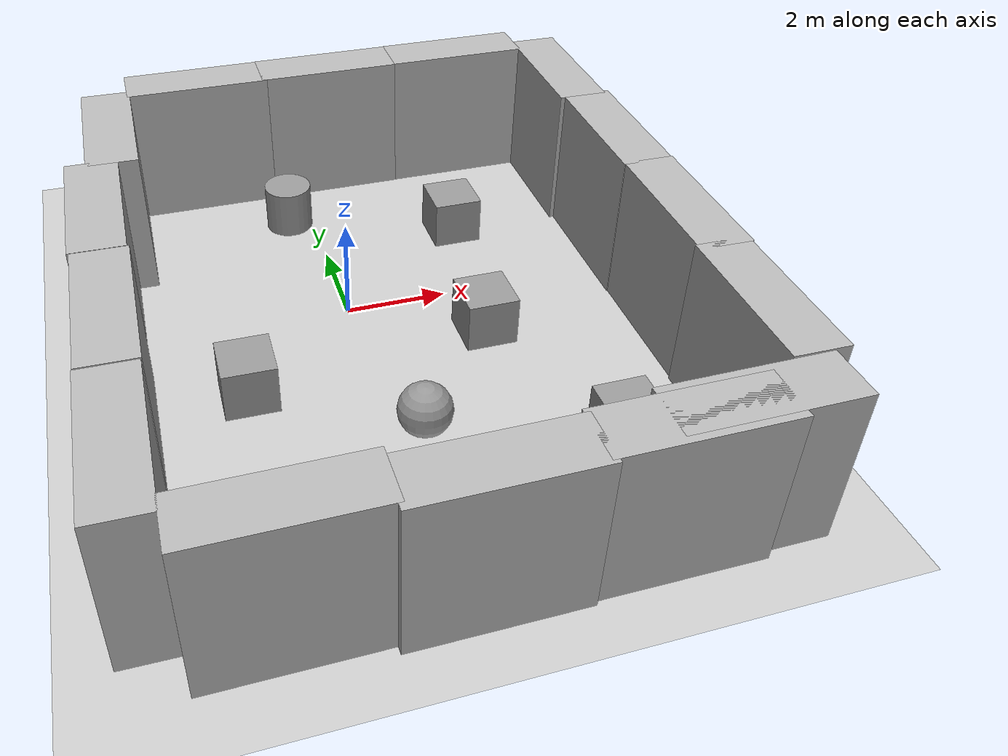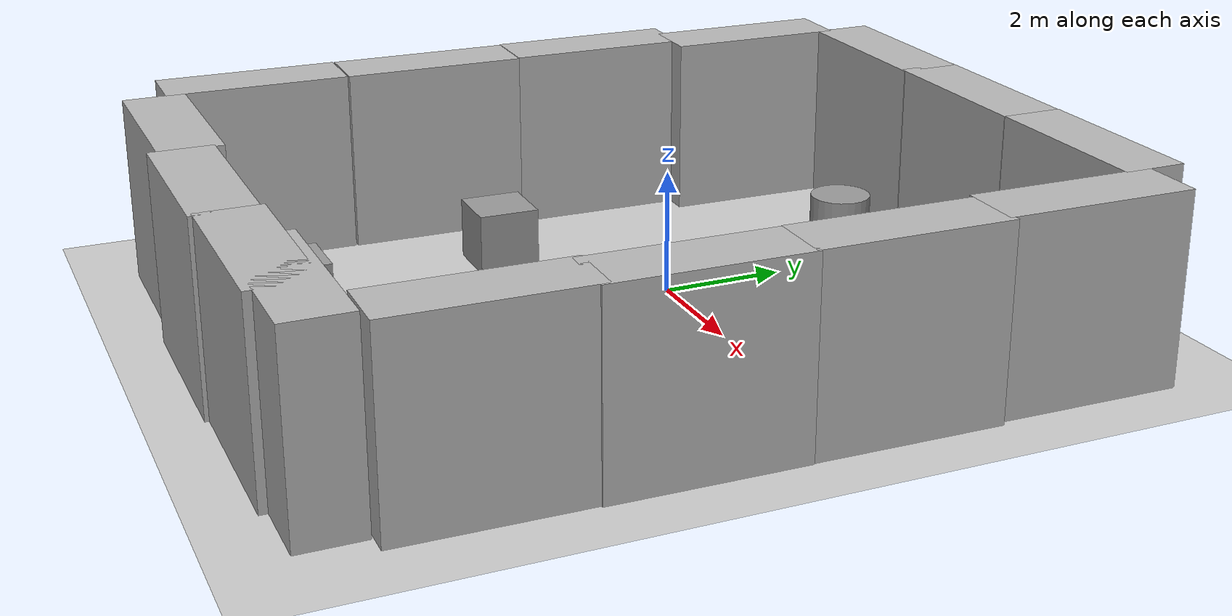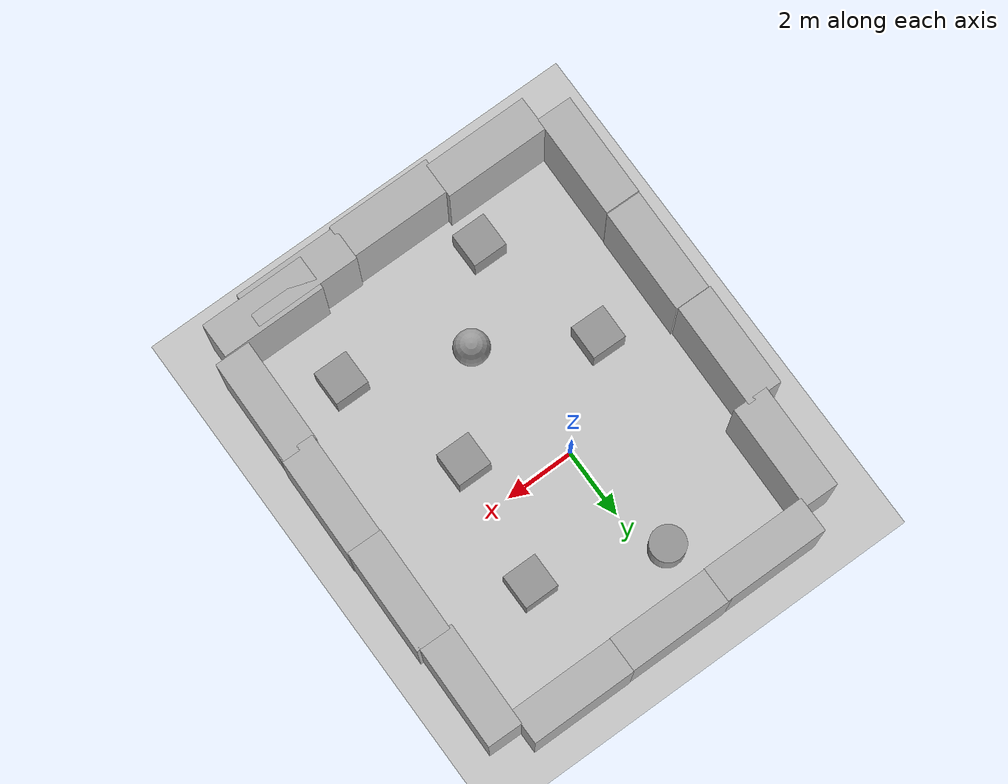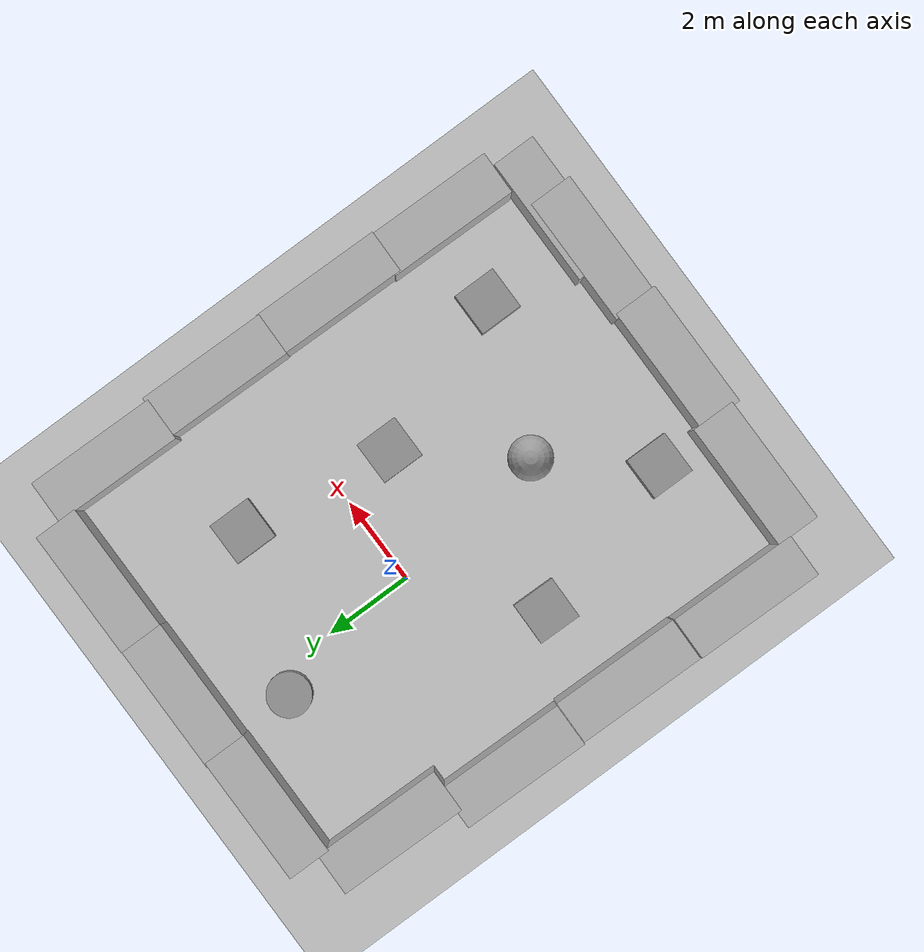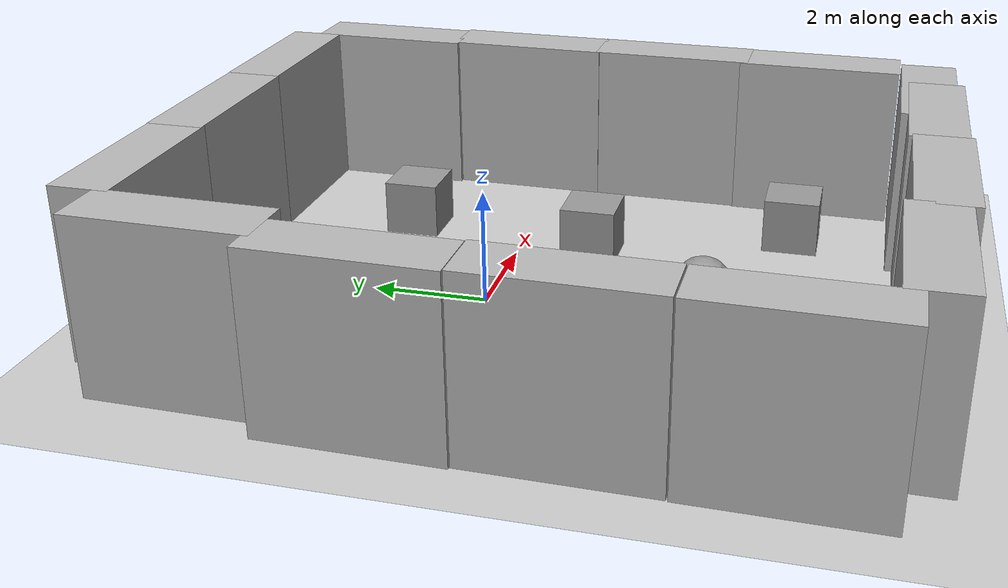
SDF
<sdf version="1.7">
 <world name="default">
  <light name="sun" type="directional">
   <pose>0 0 10 0 -0 0</pose>
   <diffuse>0.8 0.8 0.8 1</diffuse>
   <specular>0.2 0.2 0.2 1</specular>
   <attenuation>
    <range>1000</range>
    <constant>0.9</constant>
    <linear>0.01</linear>
    <quadratic>0.001</quadratic>
   </attenuation>
   <direction>-0.5 0.1 -0.9</direction>
   <spot><inner_angle>0</inner_angle><outer_angle>0</outer_angle><falloff>0</falloff></spot>
  </light>
  <model name="ground_plane">
   <static>1</static>
   <link name="link">
    <collision name="collision">
     <geometry><plane><normal>0 0 1</normal><size>100 100</size></plane></geometry>
     <surface><friction><ode><mu>100</mu><mu2>50</mu2></ode></friction></surface>
    </collision>
    <visual name="visual">
     <cast_shadows>0</cast_shadows>
     <geometry><plane><normal>0 0 1</normal><size>100 100</size></plane></geometry>
     <material>
      <script><uri>file://media/materials/scripts/gazebo.material</uri><name>Gazebo/Grey</name></script>
     </material>
    </visual>
   </link>
  </model>
  <gravity>0 0 -9.8</gravity>
  <magnetic_field>6e-06 2.3e-05 -4.2e-05</magnetic_field>
  <atmosphere type="adiabatic"/>
  <physics type="ode">
   <max_step_size>0.001</max_step_size>
   <real_time_factor>1</real_time_factor>
   <real_time_update_rate>1000</real_time_update_rate>
  </physics>
  <scene><ambient>0.4 0.4 0.4 1</ambient><background>0.7 0.7 0.7 1</background><shadows>1</shadows></scene>
  <audio><device>default</device></audio>
  <spherical_coordinates>
   <surface_model>EARTH_WGS84</surface_model>
   <latitude_deg>0</latitude_deg>
   <longitude_deg>0</longitude_deg>
   <elevation>0</elevation>
   <heading_deg>0</heading_deg>
  </spherical_coordinates>
  <model name="unit_box">
   <pose>2.40522 -1.35604 0.499995 -1e-05 -0 0</pose>
   <link name="link">
    <inertial>
     <mass>1</mass>
     <inertia>
      <ixx>0.166667</ixx>
      <ixy>0</ixy>
      <ixz>0</ixz>
      <iyy>0.166667</iyy>
      <iyz>0</iyz>
      <izz>0.166667</izz>
     </inertia>
    </inertial>
    <collision name="collision"><geometry><box><size>1 1 1</size></box></geometry></collision>
    <visual name="visual">
     <geometry><box><size>1 1 1</size></box></geometry>
     <material>
      <script><name>Gazebo/Grey</name><uri>file://media/materials/scripts/gazebo.material</uri></script>
     </material>
    </visual>
   </link>
  </model>
  <model name="unit_cylinder">
   <pose>-0.512672 3.46024 0.49999 0 -0 0</pose>
   <link name="link">
    <inertial>
     <mass>1</mass>
     <inertia><ixx>0.145833</ixx><ixy>0</ixy><ixz>0</ixz><iyy>0.145833</iyy><iyz>0</iyz><izz>0.125</izz></inertia>
    </inertial>
    <collision name="collision">
     <geometry><cylinder><radius>0.5</radius><length>1</length></cylinder></geometry>
    </collision>
    <visual name="visual">
     <geometry><cylinder><radius>0.5</radius><length>1</length></cylinder></geometry>
     <material>
      <script><name>Gazebo/Grey</name><uri>file://media/materials/scripts/gazebo.material</uri></script>
     </material>
    </visual>
   </link>
  </model>
  <model name="unit_sphere_0">
   <pose>0.480705 -3.6808 0.5 0 -0 0</pose>
   <link name="link">
    <inertial>
     <mass>1</mass>
     <inertia><ixx>0.1</ixx><ixy>0</ixy><ixz>0</ixz><iyy>0.1</iyy><iyz>0</iyz><izz>0.1</izz></inertia>
    </inertial>
    <collision name="collision"><geometry><sphere><radius>0.5</radius></sphere></geometry></collision>
    <visual name="visual">
     <geometry><sphere><radius>0.5</radius></sphere></geometry>
     <material>
      <script><name>Gazebo/Grey</name><uri>file://media/materials/scripts/gazebo.material</uri></script>
     </material>
    </visual>
   </link>
  </model>
  <model name="unit_box_1">
   <pose>-1.28306 -5.7782 0.499995 0 1e-05 0</pose>
   <link name="link">
    <inertial>
     <mass>1</mass>
     <inertia>
      <ixx>0.166667</ixx>
      <ixy>0</ixy>
      <ixz>0</ixz>
      <iyy>0.166667</iyy>
      <iyz>0</iyz>
      <izz>0.166667</izz>
     </inertia>
    </inertial>
    <collision name="collision"><geometry><box><size>1 1 1</size></box></geometry></collision>
    <visual name="visual">
     <geometry><box><size>1 1 1</size></box></geometry>
     <material>
      <script><name>Gazebo/Grey</name><uri>file://media/materials/scripts/gazebo.material</uri></script>
     </material>
    </visual>
   </link>
  </model>
  <model name="unit_box_2">
   <pose>3.7077 -4.91692 0.499995 -1e-05 -0 -0</pose>
   <link name="link">
    <inertial>
     <mass>1</mass>
     <inertia>
      <ixx>0.166667</ixx>
      <ixy>0</ixy>
      <ixz>0</ixz>
      <iyy>0.166667</iyy>
      <iyz>0</iyz>
      <izz>0.166667</izz>
     </inertia>
    </inertial>
    <collision name="collision"><geometry><box><size>1 1 1</size></box></geometry></collision>
    <visual name="visual">
     <geometry><box><size>1 1 1</size></box></geometry>
     <material>
      <script><name>Gazebo/Grey</name><uri>file://media/materials/scripts/gazebo.material</uri></script>
     </material>
    </visual>
   </link>
  </model>
  <model name="unit_box_3">
   <pose>2.87794 2.18214 0.499995 0 1e-05 0</pose>
   <link name="link">
    <inertial>
     <mass>1</mass>
     <inertia>
      <ixx>0.166667</ixx>
      <ixy>0</ixy>
      <ixz>0</ixz>
      <iyy>0.166667</iyy>
      <iyz>0</iyz>
      <izz>0.166667</izz>
     </inertia>
    </inertial>
    <collision name="collision"><geometry><box><size>1 1 1</size></box></geometry></collision>
    <visual name="visual">
     <geometry><box><size>1 1 1</size></box></geometry>
     <material>
      <script><name>Gazebo/Grey</name><uri>file://media/materials/scripts/gazebo.material</uri></script>
     </material>
    </visual>
   </link>
  </model>
  <model name="unit_box_4">
   <pose>-2.33603 -2.00523 0.499995 0 -1e-05 -0.013401</pose>
   <link name="link">
    <inertial>
     <mass>1</mass>
     <inertia>
      <ixx>0.166667</ixx>
      <ixy>0</ixy>
      <ixz>0</ixz>
      <iyy>0.166667</iyy>
      <iyz>0</iyz>
      <izz>0.166667</izz>
     </inertia>
    </inertial>
    <collision name="collision"><geometry><box><size>1 1 1</size></box></geometry></collision>
    <visual name="visual">
     <geometry><box><size>1 1 1</size></box></geometry>
     <material>
      <script><name>Gazebo/Grey</name><uri>file://media/materials/scripts/gazebo.material</uri></script>
     </material>
    </visual>
   </link>
  </model>
  <model name="brick_box_3x1x3_0">
   <static>1</static>
   <link name="chassis">
    <pose>0 0 1.5 0 -0 0</pose>
    <collision name="collision"><geometry><box><size>3 1 3</size></box></geometry></collision>
    <visual name="visual">
     <geometry><mesh><uri>model://brick_box_3x1x3/meshes/simple_box.dae</uri><scale>3 1 3</scale></mesh></geometry>
     <material>
      <script>
       <uri>model://brick_box_3x1x3/materials/scripts</uri>
       <uri>model://brick_box_3x1x3/materials/textures</uri>
       <name>BrickBox/Diffuse</name>
      </script>
     </material>
    </visual>
   </link>
   <pose>3.7973 5.1822 0 0 -0 0</pose>
  </model>
  <model name="brick_box_3x1x3_1">
   <static>1</static>
   <link name="chassis">
    <pose>0 0 1.5 0 -0 0</pose>
    <collision name="collision"><geometry><box><size>3 1 3</size></box></geometry></collision>
    <visual name="visual">
     <geometry><mesh><uri>model://brick_box_3x1x3/meshes/simple_box.dae</uri><scale>3 1 3</scale></mesh></geometry>
     <material>
      <script>
       <uri>model://brick_box_3x1x3/materials/scripts</uri>
       <uri>model://brick_box_3x1x3/materials/textures</uri>
       <name>BrickBox/Diffuse</name>
      </script>
     </material>
    </visual>
   </link>
   <pose>-2.10166 5.15588 0 0 -0 0</pose>
  </model>
  <model name="brick_box_3x1x3_2">
   <static>1</static>
   <link name="chassis">
    <pose>0 0 1.5 0 -0 0</pose>
    <collision name="collision"><geometry><box><size>3 1 3</size></box></geometry></collision>
    <visual name="visual">
     <geometry><mesh><uri>model://brick_box_3x1x3/meshes/simple_box.dae</uri><scale>3 1 3</scale></mesh></geometry>
     <material>
      <script>
       <uri>model://brick_box_3x1x3/materials/scripts</uri>
       <uri>model://brick_box_3x1x3/materials/textures</uri>
       <name>BrickBox/Diffuse</name>
      </script>
     </material>
    </visual>
   </link>
   <pose>5.75008 3.59189 0 0 0 -1.58391</pose>
  </model>
  <model name="brick_box_3x1x3">
   <static>1</static>
   <link name="chassis">
    <pose>0 0 1.5 0 -0 0</pose>
    <collision name="collision"><geometry><box><size>3 1 3</size></box></geometry></collision>
    <visual name="visual">
     <geometry><mesh><uri>model://brick_box_3x1x3/meshes/simple_box.dae</uri><scale>3 1 3</scale></mesh></geometry>
     <material>
      <script>
       <uri>model://brick_box_3x1x3/materials/scripts</uri>
       <uri>model://brick_box_3x1x3/materials/textures</uri>
       <name>BrickBox/Diffuse</name>
      </script>
     </material>
    </visual>
   </link>
   <pose>0.79725 5.17039 0 0 -0 0</pose>
  </model>
  <model name="brick_box_3x1x3_2_clone">
   <static>1</static>
   <link name="chassis">
    <pose>0 0 1.5 0 -0 0</pose>
    <collision name="collision"><geometry><box><size>3 1 3</size></box></geometry></collision>
    <visual name="visual">
     <geometry><mesh><uri>model://brick_box_3x1x3/meshes/simple_box.dae</uri><scale>3 1 3</scale></mesh></geometry>
     <material>
      <script>
       <uri>model://brick_box_3x1x3/materials/scripts</uri>
       <uri>model://brick_box_3x1x3/materials/textures</uri>
       <name>BrickBox/Diffuse</name>
      </script>
     </material>
    </visual>
   </link>
   <pose>5.80022 0.66613 0 0 0 -1.58391</pose>
  </model>
  <model name="brick_box_3x1x3_2_clone_0">
   <static>1</static>
   <link name="chassis">
    <pose>0 0 1.5 0 -0 0</pose>
    <collision name="collision"><geometry><box><size>3 1 3</size></box></geometry></collision>
    <visual name="visual">
     <geometry><mesh><uri>model://brick_box_3x1x3/meshes/simple_box.dae</uri><scale>3 1 3</scale></mesh></geometry>
     <material>
      <script>
       <uri>model://brick_box_3x1x3/materials/scripts</uri>
       <uri>model://brick_box_3x1x3/materials/textures</uri>
       <name>BrickBox/Diffuse</name>
      </script>
     </material>
    </visual>
   </link>
   <pose>5.78061 -2.2738 0 0 0 -1.58391</pose>
  </model>
  <model name="brick_box_3x1x3_2_clone_1">
   <static>1</static>
   <link name="chassis">
    <pose>0 0 1.5 0 -0 0</pose>
    <collision name="collision"><geometry><box><size>3 1 3</size></box></geometry></collision>
    <visual name="visual">
     <geometry><mesh><uri>model://brick_box_3x1x3/meshes/simple_box.dae</uri><scale>3 1 3</scale></mesh></geometry>
     <material>
      <script>
       <uri>model://brick_box_3x1x3/materials/scripts</uri>
       <uri>model://brick_box_3x1x3/materials/textures</uri>
       <name>BrickBox/Diffuse</name>
      </script>
     </material>
    </visual>
   </link>
   <pose>5.71068 -5.12828 0 0 0 -1.58391</pose>
  </model>
  <model name="brick_box_3x1x3_2_clone_2">
   <static>1</static>
   <link name="chassis">
    <pose>0 0 1.5 0 -0 0</pose>
    <collision name="collision"><geometry><box><size>3 1 3</size></box></geometry></collision>
    <visual name="visual">
     <geometry><mesh><uri>model://brick_box_3x1x3/meshes/simple_box.dae</uri><scale>3 1 3</scale></mesh></geometry>
     <material>
      <script>
       <uri>model://brick_box_3x1x3/materials/scripts</uri>
       <uri>model://brick_box_3x1x3/materials/textures</uri>
       <name>BrickBox/Diffuse</name>
      </script>
     </material>
    </visual>
   </link>
   <pose>-4.06005 3.4083 0 0 0 -1.58391</pose>
  </model>
  <model name="brick_box_3x1x3_2_clone_3">
   <static>1</static>
   <link name="chassis">
    <pose>0 0 1.5 0 -0 0</pose>
    <collision name="collision"><geometry><box><size>3 1 3</size></box></geometry></collision>
    <visual name="visual">
     <geometry><mesh><uri>model://brick_box_3x1x3/meshes/simple_box.dae</uri><scale>3 1 3</scale></mesh></geometry>
     <material>
      <script>
       <uri>model://brick_box_3x1x3/materials/scripts</uri>
       <uri>model://brick_box_3x1x3/materials/textures</uri>
       <name>BrickBox/Diffuse</name>
      </script>
     </material>
    </visual>
   </link>
   <pose>-4.48331 0.51624 0 0 0 -1.58391</pose>
  </model>
  <model name="brick_box_3x1x3_2_clone_4">
   <static>1</static>
   <link name="chassis">
    <pose>0 0 1.5 0 -0 0</pose>
    <collision name="collision"><geometry><box><size>3 1 3</size></box></geometry></collision>
    <visual name="visual">
     <geometry><mesh><uri>model://brick_box_3x1x3/meshes/simple_box.dae</uri><scale>3 1 3</scale></mesh></geometry>
     <material>
      <script>
       <uri>model://brick_box_3x1x3/materials/scripts</uri>
       <uri>model://brick_box_3x1x3/materials/textures</uri>
       <name>BrickBox/Diffuse</name>
      </script>
     </material>
    </visual>
   </link>
   <pose>-4.48331 -2.4954 0 0 0 -1.58391</pose>
  </model>
  <model name="brick_box_3x1x3_2_clone_5">
   <static>1</static>
   <link name="chassis">
    <pose>0 0 1.5 0 -0 0</pose>
    <collision name="collision"><geometry><box><size>3 1 3</size></box></geometry></collision>
    <visual name="visual">
     <geometry><mesh><uri>model://brick_box_3x1x3/meshes/simple_box.dae</uri><scale>3 1 3</scale></mesh></geometry>
     <material>
      <script>
       <uri>model://brick_box_3x1x3/materials/scripts</uri>
       <uri>model://brick_box_3x1x3/materials/textures</uri>
       <name>BrickBox/Diffuse</name>
      </script>
     </material>
    </visual>
   </link>
   <pose>-4.53613 -5.52087 0 0 0 -1.58391</pose>
  </model>
  <model name="brick_box_3x1x3_3">
   <static>1</static>
   <link name="chassis">
    <pose>0 0 1.5 0 -0 0</pose>
    <collision name="collision"><geometry><box><size>3 1 3</size></box></geometry></collision>
    <visual name="visual">
     <geometry><mesh><uri>model://brick_box_3x1x3/meshes/simple_box.dae</uri><scale>3 1 3</scale></mesh></geometry>
     <material>
      <script>
       <uri>model://brick_box_3x1x3/materials/scripts</uri>
       <uri>model://brick_box_3x1x3/materials/textures</uri>
       <name>BrickBox/Diffuse</name>
      </script>
     </material>
    </visual>
   </link>
   <pose>-2.57003 -7.21474 0 0 -0 0</pose>
  </model>
  <model name="brick_box_3x1x3_3_clone">
   <static>1</static>
   <link name="chassis">
    <pose>0 0 1.5 0 -0 0</pose>
    <collision name="collision"><geometry><box><size>3 1 3</size></box></geometry></collision>
    <visual name="visual">
     <geometry><mesh><uri>model://brick_box_3x1x3/meshes/simple_box.dae</uri><scale>3 1 3</scale></mesh></geometry>
     <material>
      <script>
       <uri>model://brick_box_3x1x3/materials/scripts</uri>
       <uri>model://brick_box_3x1x3/materials/textures</uri>
       <name>BrickBox/Diffuse</name>
      </script>
     </material>
    </visual>
   </link>
   <pose>0.34496 -7.35239 0 0 -0 0</pose>
  </model>
  <model name="brick_box_3x1x3_3_clone_0">
   <static>1</static>
   <link name="chassis">
    <pose>0 0 1.5 0 -0 0</pose>
    <collision name="collision"><geometry><box><size>3 1 3</size></box></geometry></collision>
    <visual name="visual">
     <geometry><mesh><uri>model://brick_box_3x1x3/meshes/simple_box.dae</uri><scale>3 1 3</scale></mesh></geometry>
     <material>
      <script>
       <uri>model://brick_box_3x1x3/materials/scripts</uri>
       <uri>model://brick_box_3x1x3/materials/textures</uri>
       <name>BrickBox/Diffuse</name>
      </script>
     </material>
    </visual>
   </link>
   <pose>3.24265 -7.2868 0 0 -0 0</pose>
  </model>
  <model name="brick_box_3x1x3_3_clone_1">
   <static>1</static>
   <link name="chassis">
    <pose>0 0 1.5 0 -0 0</pose>
    <collision name="collision"><geometry><box><size>3 1 3</size></box></geometry></collision>
    <visual name="visual">
     <geometry><mesh><uri>model://brick_box_3x1x3/meshes/simple_box.dae</uri><scale>3 1 3</scale></mesh></geometry>
     <material>
      <script>
       <uri>model://brick_box_3x1x3/materials/scripts</uri>
       <uri>model://brick_box_3x1x3/materials/textures</uri>
       <name>BrickBox/Diffuse</name>
      </script>
     </material>
    </visual>
   </link>
   <pose>4.37547 -7.15938 0 0 -0 0</pose>
  </model>
 </world>
</sdf>
